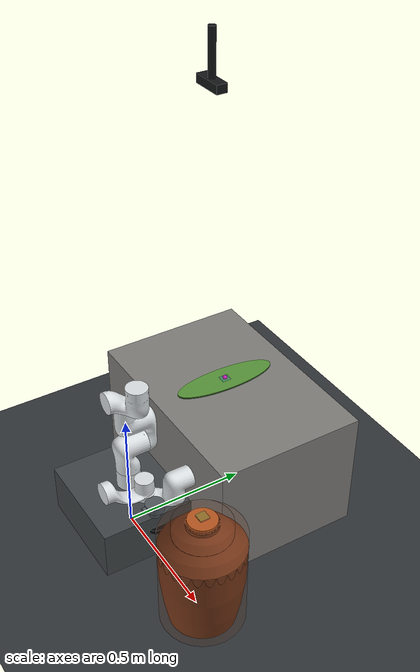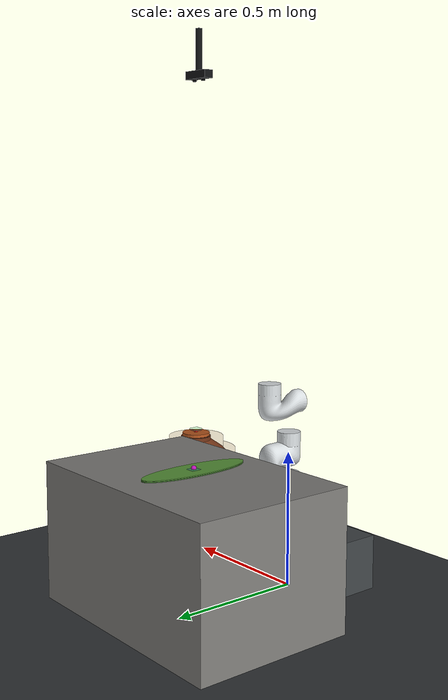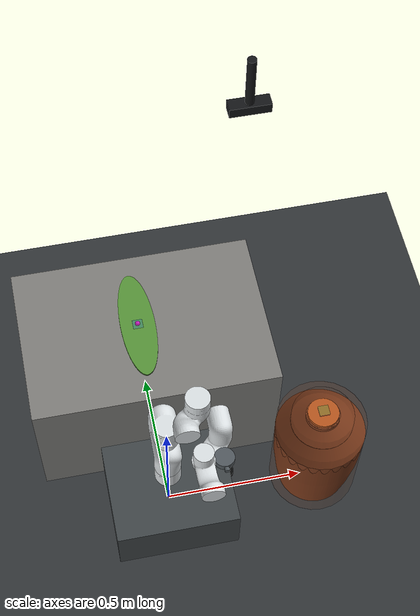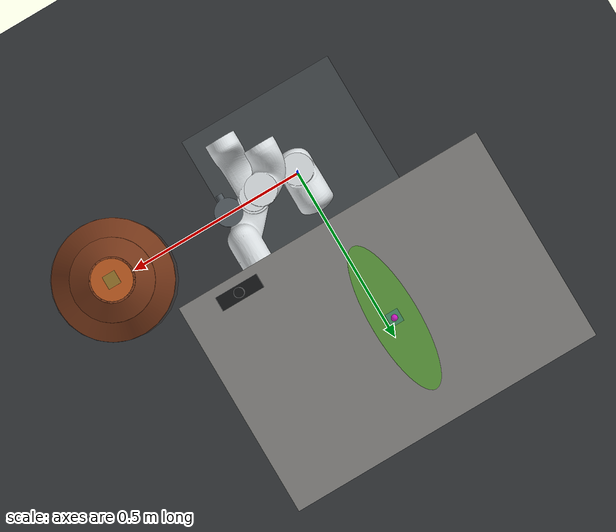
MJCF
<mujoco model="winejar vacuum leaf placement scene">
  <include file="xarm6_vacuum.xml"/>

  <option integrator="implicitfast" gravity="0 0 -9.81" timestep="0.001"/>
  <statistic center="0.36 0.24 0.42" extent="1.05"/>

  <visual>
    <quality shadowsize="2048"/>
    <headlight diffuse="0.28 0.28 0.27" ambient="0.15 0.16 0.18" specular="0.16 0.16 0.16"/>
    <rgba haze="0.72 0.76 0.80 1"/>
    <global azimuth="135" elevation="-25"/>
  </visual>

  <asset>
    <texture type="2d" name="workbench_texture" file="textures/workbench_laminate.png"/>
    <material name="table_laminate" texture="workbench_texture" texuniform="true" texrepeat="2 2"
              rgba="0.66 0.68 0.70 1" specular="0.14" shininess="0.18" reflectance="0.02"/>
    <texture type="skybox" builtin="gradient" rgb1="0.82 0.86 0.90" rgb2="0.26 0.30 0.34"
             width="512" height="3072"/>
    <texture type="2d" name="ground_texture" builtin="checker"
             rgb1="0.18 0.19 0.20" rgb2="0.21 0.22 0.23" width="512" height="512"/>
    <material name="ground_material" texture="ground_texture" texuniform="true" texrepeat="18 18"
              specular="0.08" shininess="0.12" reflectance="0.02"/>

    <material name="base_mat" rgba="0.25 0.27 0.28 1" specular="0.15" shininess="0.20"/>
    <material name="jar_mat" rgba="0.48 0.23 0.11 1" specular="0.18" shininess="0.32"/>
    <material name="jar_collision_mat" rgba="0.48 0.23 0.11 0.12"/>
    <material name="ceramic_mat" rgba="0.72 0.34 0.12 1" specular="0.18" shininess="0.28"/>
    <material name="bamboo_mat_top" rgba="0.34 0.58 0.22 1" specular="0.08" shininess="0.12"/>
    <material name="bamboo_mat_bottom" rgba="0.26 0.48 0.18 1" specular="0.08" shininess="0.12"/>
    <material name="target_mat" rgba="0.1 0.45 1.0 0.35"/>
    <material name="camera_body_mat" rgba="0.08 0.085 0.09 1" specular="0.18" shininess="0.22"/>
    <material name="camera_lens_mat" rgba="0.01 0.012 0.014 1" specular="0.28" shininess="0.35"/>

    <mesh name="wine_jar_mesh" file="materials/wine_jar.stl"/>
    <mesh name="bamboo_leaf_mesh" file="materials/bamboo_leaf.stl"/>
  </asset>

  <worldbody>
    <light name="key_light" pos="-0.35 -0.55 1.4" dir="0.25 0.35 -1" directional="true"
           diffuse="0.52 0.50 0.46" specular="0.22 0.21 0.19" castshadow="true"/>
    <light name="fill_light" pos="0.75 0.45 1.05" dir="-0.5 -0.25 -1" directional="true"
           diffuse="0.18 0.21 0.26" specular="0.06 0.07 0.09" castshadow="false"/>
    <geom name="floor" pos="0 0 -0.02" size="0 0 0.05" type="plane" material="ground_material"/>

    <body name="robot_base_pedestal" pos="0 0 0.10">
      <geom name="robot_base_pedestal_geom" type="box" size="0.22 0.22 0.10" material="base_mat"
            mass="2000" friction="1 1 1"/>
    </body>

    <body name="wine_jar" pos="0.55 0 0">
      <geom name="wine_jar_visual" type="mesh" mesh="wine_jar_mesh" material="jar_mat"
            contype="0" conaffinity="0"/>
      <geom name="wine_jar_belly_collision" type="cylinder" pos="0 0 0.205" size="0.16 0.205"
            material="jar_collision_mat" mass="8" friction="1 1 1"/>
      <geom name="wine_jar_shoulder_collision" type="cylinder" pos="0 0 0.405" size="0.11 0.055"
            material="jar_collision_mat" mass="2" friction="1 1 1"/>
      <geom name="wine_jar_neck_collision" type="cylinder" pos="0 0 0.4525" size="0.06 0.0075"
            material="jar_collision_mat" mass="1" friction="1 1 1"/>
      <site name="jar_mouth_center" pos="0 0 0.46" type="sphere" size="0.012" rgba="1 0 0 0.8"/>
    </body>

    <body name="ceramic_disc_on_jar" pos="0.55 0 0.468">
      <geom name="ceramic_disc_geom" type="cylinder" size="0.055 0.006" material="ceramic_mat"
            mass="0.20" friction="1 1 1"/>
      <site name="ceramic_disc_center_site" pos="0 0 0.007" type="sphere" size="0.007" rgba="1 0 0 0.7"/>
      <site name="jar_leaf_target_0" pos="0 0 0.016" euler="0 0 0" type="box" size="0.018 0.018 0.002"
            rgba="0.1 0.45 1.0 0.18"/>
      <site name="jar_leaf_target_90" pos="0 0 0.020" euler="0 0 1.5708" type="box" size="0.018 0.018 0.002"
            rgba="0.0 0.85 0.35 0.18"/>
    </body>

    <body name="material_table" pos="0.00 0.45 0.25">
      <geom name="material_table_geom" type="box" size="0.44 0.30 0.25" material="table_laminate"
            mass="2000" friction="1 1 1"/>
    </body>

    <body name="bamboo_leaf_bottom" pos="-0.02 0.45 0.512" euler="0 0 1.5708">
      <freejoint name="bamboo_leaf_bottom_freejoint"/>
      <geom name="bamboo_leaf_bottom_geom" type="mesh" mesh="bamboo_leaf_mesh" material="bamboo_mat_bottom"
            mass="0.01" friction="1 1 1"/>
      <site name="bamboo_leaf_bottom_center_site" pos="0 0 0.003" type="sphere" size="0.006" rgba="1 0 0 0.7"/>
      <site name="bamboo_leaf_bottom_pick_site" pos="0 0 0.004" type="sphere" size="0.007" rgba="0 1 0 0.7"/>
      <site name="bamboo_leaf_bottom_place_target" pos="0 0 0.004" type="box" size="0.018 0.018 0.002"
            rgba="0.0 0.4 1.0 0.18"/>
    </body>

    <body name="bamboo_leaf_top" pos="-0.02 0.45 0.516" euler="0 0 1.5708">
      <freejoint name="bamboo_leaf_top_freejoint"/>
      <geom name="bamboo_leaf_top_geom" type="mesh" mesh="bamboo_leaf_mesh" material="bamboo_mat_top"
            mass="0.01" friction="1 1 1"/>
      <site name="bamboo_leaf_top_center_site" pos="0 0 0.003" type="sphere" size="0.006" rgba="1 0 0 0.7"/>
      <site name="bamboo_leaf_top_pick_site" pos="0 0 0.004" type="sphere" size="0.007" rgba="0 1 0 0.7"/>
      <site name="leaf_stack_pick_site" pos="0 0 0.006" type="sphere" size="0.009" rgba="1 0 1 0.75"/>
    </body>

    <body name="global_camera_rig" pos="0.27 0.20 1.85">
      <geom name="global_camera_body_geom" type="box" pos="0 0 0" size="0.055 0.018 0.014"
            material="camera_body_mat" mass="0.4" contype="0" conaffinity="0"/>
      <geom name="global_camera_left_lens_geom" type="cylinder" pos="-0.024 0 -0.018" size="0.007 0.004"
            material="camera_lens_mat" mass="0.02" contype="0" conaffinity="0"/>
      <geom name="global_camera_right_lens_geom" type="cylinder" pos="0.024 0 -0.018" size="0.007 0.004"
            material="camera_lens_mat" mass="0.02" contype="0" conaffinity="0"/>
      <geom name="global_camera_mount_geom" type="cylinder" pos="0 0 0.08" size="0.012 0.08"
            material="camera_body_mat" mass="0.3" contype="0" conaffinity="0"/>
      <camera name="global_overhead_camera" pos="0 0 -0.022" xyaxes="1 0 0 0 1 0" fovy="48" resolution="1280 720"/>
    </body>
  </worldbody>

  <equality>
    <weld name="suction_weld_top" body1="vacuum_end_effector" body2="bamboo_leaf_top"
          active="false" solref="0.004 1" solimp="0.95 0.99 0.001"/>
    <weld name="suction_weld_bottom" body1="vacuum_end_effector" body2="bamboo_leaf_bottom"
          active="false" solref="0.004 1" solimp="0.95 0.99 0.001"/>
  </equality>
</mujoco>

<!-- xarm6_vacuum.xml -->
<mujoco model="xarm6 vacuum">
  <compiler angle="radian" autolimits="true" meshdir="assets"/>

  <option integrator="implicitfast" gravity="0 0 -9.81"/>

  <asset>
    <material name="white" rgba="0.86 0.88 0.89 1" specular="0.32" shininess="0.42" reflectance="0.04"/>
    <material name="gray" rgba="0.32 0.35 0.37 1" specular="0.55" shininess="0.62" reflectance="0.10"/>
    <material name="black" rgba="0.045 0.052 0.058 1" specular="0.16" shininess="0.24" reflectance="0.02"/>
    <material name="vacuum_rubber" rgba="0.02 0.025 0.025 1" specular="0.06" shininess="0.12"/>

    <mesh file="link_base.stl"/>
    <mesh file="link1.stl"/>
    <mesh file="link2.stl"/>
    <mesh file="link3.stl"/>
    <mesh file="link4.stl"/>
    <mesh file="link5.stl"/>
    <mesh file="link6.stl"/>
    <mesh file="end_tool.stl"/>
  </asset>

  <default>
    <default class="xarm6">
      <geom type="mesh" material="white"/>
      <joint axis="0 0 1" armature="0.1" range="-6.28319 6.28319" frictionloss="1"/>
      <default class="size1">
        <joint damping="10"/>
      </default>
      <default class="size2">
        <joint damping="5"/>
      </default>
      <default class="size3">
        <joint damping="2"/>
      </default>
      <default class="visual">
        <geom type="mesh" contype="0" conaffinity="0" group="2"/>
      </default>
      <site size="0.001" rgba="1 0 0 1" group="4"/>
    </default>
  </default>

  <worldbody>
    <body name="line_base" pos="0 0 .12" childclass="xarm6">
      <inertial pos="-0.021131 -0.0016302 0.056488" quat="0.696843 0.20176 0.10388 0.680376" mass="0.88556"
        diaginertia="0.00382023 0.00335282 0.00167725"/>
      <geom mesh="link_base"/>

      <body name="link1" pos="0 0 0.267">
        <inertial pos="-0.0002 0.02905 -0.01233" quat="0.978953 -0.202769 -0.00441617 -0.0227264" mass="2.382"
          diaginertia="0.00569127 0.00533384 0.00293865"/>
        <joint name="joint1" class="size1"/>
        <geom mesh="link1"/>

        <body name="link2" quat="1 -1 0 0">
          <inertial pos="0.03881 -0.22783 0.03496" quat="0.635305 0.753023 0.170976 -0.010531" mass="2.2675"
            diaginertia="0.0294477 0.0281783 0.00383449"/>
          <joint name="joint2" range="-2.059 2.0944" class="size1"/>
          <geom mesh="link2"/>

          <body name="link3" pos="0.0535 -0.2845 0">
            <inertial pos="0.07041 0.11631 0.0107" quat="0.845838 0.425539 -0.293179 0.132369" mass="1.875"
              diaginertia="0.00714132 0.00699471 0.00196753"/>
            <joint name="joint3" range="-3.927 0.19198" class="size2"/>
            <geom mesh="link3"/>

            <body name="link4" pos="0.0775 0.3425 0" quat="1 -1 0 0">
              <inertial pos="-0.00018 0.01798 -0.02291" quat="0.99929 -0.0369702 0.00179434 -0.00701174" mass="1.3192"
                diaginertia="0.00489614 0.00447403 0.00132609"/>
              <joint name="joint4" class="size2"/>
              <geom mesh="link4"/>

              <body name="link5" pos="0 0 0" quat="1 1 0 0">
                <inertial pos="0.0651 0.03096 0.00315" quat="-0.223008 0.771309 0.16027 0.574163" mass="1.33854"
                  diaginertia="0.00241824 0.00213367 0.00108731"/>
                <joint name="joint5" range="-1.69297 3.14159" class="size3"/>
                <geom mesh="link5"/>

                <body name="link6" pos="0.076 0.097 0" quat="1 -1 0 0">
                  <inertial pos="0.00763576 -0.00272358 0.0307029" quat="0.634077 -0.153028 -0.073538 0.754401" mass="0.838615"
                    diaginertia="0.00129456 0.00116006 0.00078716"/>
                  <joint name="joint6" class="size3"/>
                  <geom material="gray" mesh="end_tool" quat="0 0 0 1"/>

                  <body name="vacuum_end_effector" pos="0 0 0.015">
                    <inertial pos="0 0 0.045" mass="0.25" diaginertia="0.00018 0.00018 0.00008"/>
                    <geom name="vacuum_mount_geom" type="cylinder" pos="0 0 -0.008" size="0.022 0.024" material="gray"
                          mass="0.12" friction="0.8 0.8 0.8"/>
                    <geom name="vacuum_stem_geom" type="cylinder" pos="0 0 0.038" size="0.010 0.034" material="black"
                          mass="0.05" friction="0.8 0.8 0.8"/>
                    <geom name="vacuum_cup_geom" type="cylinder" pos="0 0 0.078" size="0.035 0.008" material="vacuum_rubber"
                          mass="0.08" friction="1.2 1.2 1.2"/>
                    <site name="vacuum_suction_site" pos="0 0 0.087" type="sphere" size="0.008" rgba="0 0.8 1 0.85"/>
                    <site name="link_tcp" pos="0 0 0.087" type="sphere" size="0.01" rgba="1 0 0 0" group="1"/>
                  </body>
                </body>
              </body>
            </body>
          </body>
        </body>
      </body>
    </body>
  </worldbody>

  <actuator>
    <velocity name="vel1" joint="joint1" kv="1000" ctrlrange="-3.14159 3.14159" forcerange="-50 50"/>
    <velocity name="vel2" joint="joint2" kv="1000" ctrlrange="-3.14159 3.14159" forcerange="-50 50"/>
    <velocity name="vel3" joint="joint3" kv="1000" ctrlrange="-3.14159 3.14159" forcerange="-30 30"/>
    <velocity name="vel4" joint="joint4" kv="1000" ctrlrange="-3.14159 3.14159" forcerange="-30 30"/>
    <velocity name="vel5" joint="joint5" kv="1000" ctrlrange="-3.14159 3.14159" forcerange="-20 20"/>
    <velocity name="vel6" joint="joint6" kv="1000" ctrlrange="-3.14159 3.14159" forcerange="-20 20"/>
  </actuator>
</mujoco>
